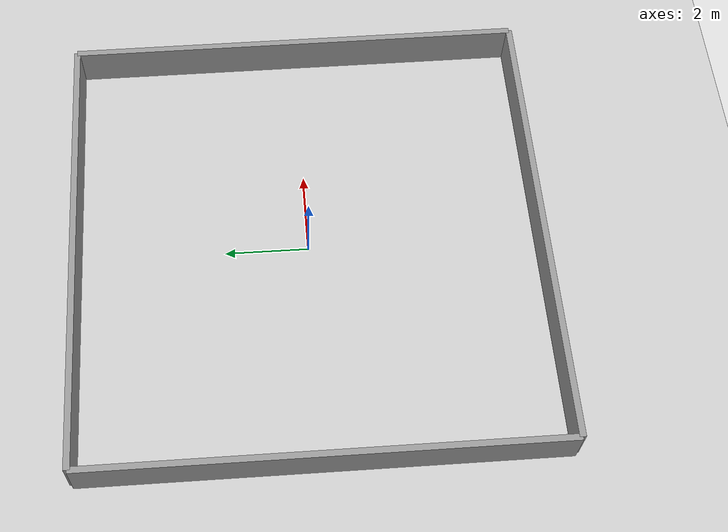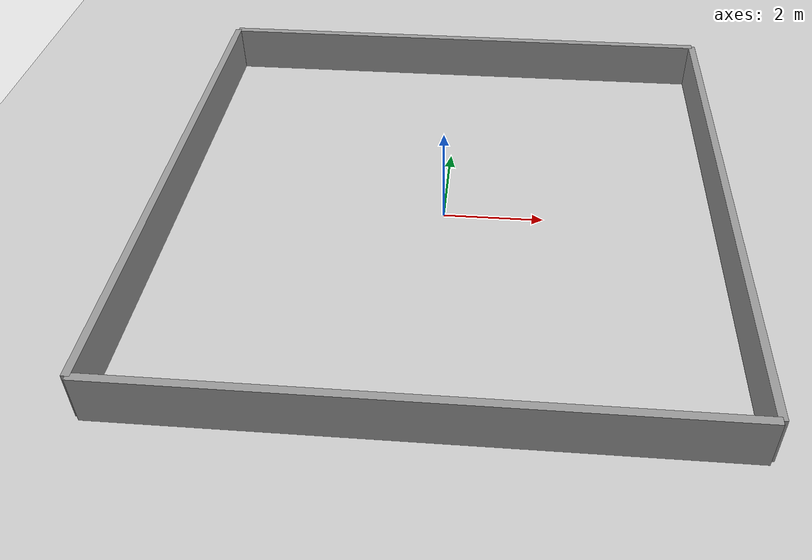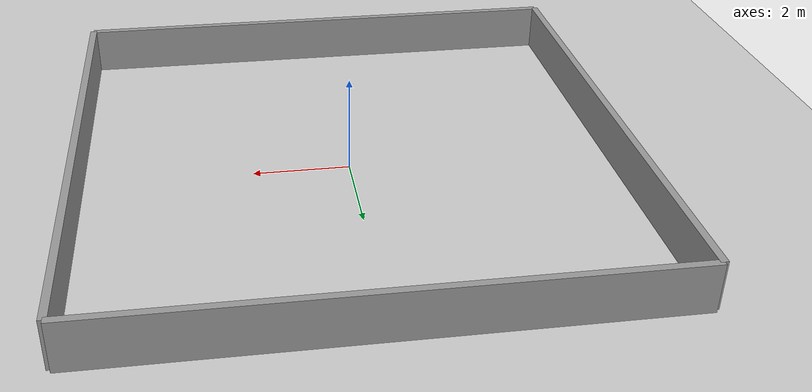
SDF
<?xml version="1.0" ?>
<sdf version="1.5">
  <world name="default">
        <physics type="ode">
      <gravity>0 0 -9.81</gravity>
      <ode>
        <solver>
          <type>quick</type>
          <iters>50</iters>
          <sor>1.0</sor>
        </solver>
        <constraints>
          <cfm>0.0</cfm>
          <erp>0.2</erp>
          <contact_max_correcting_vel>100.0</contact_max_correcting_vel>
          <contact_surface_layer>0.0</contact_surface_layer>
        </constraints>
      </ode>
      <!-- main impact on whether objects slip out of the gripper -->
      <real_time_update_rate>1000</real_time_update_rate>
      <max_step_size>0.0010</max_step_size>
    </physics>

    <light type="directional" name="sun">
      <cast_shadows>true</cast_shadows>
      <pose>0 0 50 0 0 0</pose>
      <diffuse>0.8 0.8 0.8 1</diffuse>
      <specular>0.2 0.2 0.2 1</specular>
      <attenuation>
        <range>1000</range>
        <constant>0.9</constant>
        <linear>0.01</linear>
        <quadratic>0.001</quadratic>
      </attenuation>
      <direction>-0.5 0.1 -0.9</direction>
    </light>
    <include>
      <uri>model://ground_plane</uri>
    </include>

      <model name='EmptyRoom'>
    <link name='Wall_1'>
      <collision name='Wall_1_Collision'>
        <geometry>
          <box>
            <size>11 0.15 1</size>
          </box>
        </geometry>
        <pose frame=''>0 0 0.5 0 -0 0</pose>
      </collision>
      <visual name='Wall_1_Visual'>
        <pose frame=''>0 0 0.5 0 -0 0</pose>
        <geometry>
          <box>
            <size>11 0.15 1</size>
          </box>
        </geometry>
        <material>
          <script>
            <uri>file://media/materials/scripts/gazebo.material</uri>
            <name>Gazebo/Grey</name>
          </script>
          <ambient>1 1 1 1</ambient>
        </material>
        <meta>
          <layer>0</layer>
        </meta>
      </visual>
      <pose frame=''>-5.5 0 0 0 -0 -1.5708</pose>
    </link>
    <link name='Wall_2'>
      <collision name='Wall_2_Collision'>
        <geometry>
          <box>
            <size>11 0.15 1</size>
          </box>
        </geometry>
        <pose frame=''>0 0 0.5 0 -0 0</pose>
      </collision>
      <visual name='Wall_2_Visual'>
        <pose frame=''>0 0 0.5 0 -0 0</pose>
        <geometry>
          <box>
            <size>11 0.15 1</size>
          </box>
        </geometry>
        <material>
          <script>
            <uri>file://media/materials/scripts/gazebo.material</uri>
            <name>Gazebo/Grey</name>
          </script>
          <ambient>1 1 1 1</ambient>
        </material>
        <meta>
          <layer>0</layer>
        </meta>
      </visual>
      <pose frame=''>-0 -5.5 0 0 -0 0</pose>
    </link>
    <link name='Wall_3'>
      <collision name='Wall_3_Collision'>
        <geometry>
          <box>
            <size>11 0.15 1</size>
          </box>
        </geometry>
        <pose frame=''>0 0 0.5 0 -0 0</pose>
      </collision>
      <visual name='Wall_3_Visual'>
        <pose frame=''>0 0 0.5 0 -0 0</pose>
        <geometry>
          <box>
            <size>11 0.15 1</size>
          </box>
        </geometry>
        <material>
          <script>
            <uri>file://media/materials/scripts/gazebo.material</uri>
            <name>Gazebo/Grey</name>
          </script>
          <ambient>1 1 1 1</ambient>
        </material>
        <meta>
          <layer>0</layer>
        </meta>
      </visual>
      <pose frame=''>5.5 0 0 0 -0 1.5708</pose>
    </link>
    <link name='Wall_4'>
      <collision name='Wall_4_Collision'>
        <geometry>
          <box>
            <size>11 0.15 1</size>
          </box>
        </geometry>
        <pose frame=''>0 0 0.5 0 -0 0</pose>
      </collision>
      <visual name='Wall_4_Visual'>
        <pose frame=''>0 0 0.5 0 -0 0</pose>
        <geometry>
          <box>
            <size>11 0.15 1</size>
          </box>
        </geometry>
        <material>
          <script>
            <uri>file://media/materials/scripts/gazebo.material</uri>
            <name>Gazebo/Grey</name>
          </script>
          <ambient>1 1 1 1</ambient>
        </material>
        <meta>
          <layer>0</layer>
        </meta>
      </visual>
      <pose frame=''>-0 5.5 0 0 -0 3.14159</pose>
    </link>
    <static>1</static>
  </model>

  </world>
</sdf>
